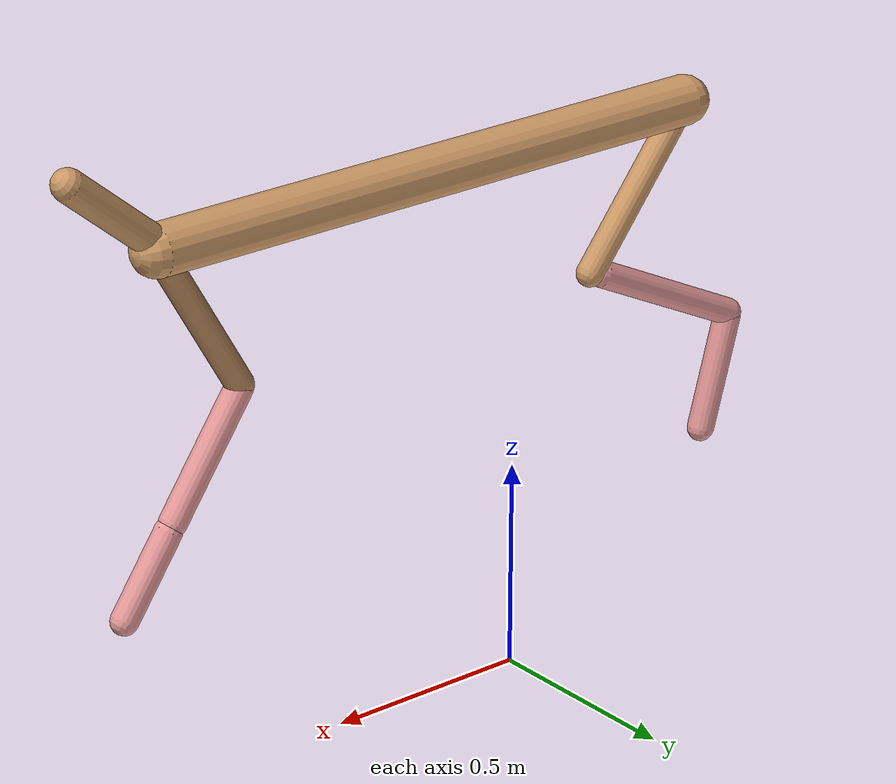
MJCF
<mujoco model="cheetah">
  <compiler angle="radian" coordinate="local" inertiafromgeom="true" settotalmass="14" />
  <default>
    <joint armature=".1" damping=".01" limited="true" solimplimit="0 .8 .03" solreflimit=".02 1" stiffness="8" />
    <geom conaffinity="0" condim="3" contype="1" friction="0.8 .1 .1" rgba="0.8 0.6 .4 1" solimp="0.0 0.8 0.01" solref="0.02 1" />
    <motor ctrllimited="true" ctrlrange="-1 1" />
  </default>
  <size nstack="300000" nuser_geom="1" />
  <option gravity="0 0 -9.81" timestep="0.01" />
  <worldbody>
    <body name="torso" pos="0.0 0.0 1.2712855271918047">
      <joint armature="0" axis="1 0 0" damping="0" limited="false" name="ignorex" pos="0 0 0" stiffness="0" type="slide" />
      <joint armature="0" axis="0 0 1" damping="0" limited="false" name="ignorez" pos="0 0 0" stiffness="0" type="slide" />
      <joint armature="0" axis="0 1 0" damping="0" limited="false" name="ignorey" pos="0 0 0" stiffness="0" type="hinge" />
      <geom fromto="-0.5 0.0 0.0 0.9725767863297508 0.0 0.0" name="torso" size="0.059430438493215096" type="capsule" />
      <geom axisangle="0 1 0 .87" name="head" pos="1.0725767863297508 0.0 0.1" size="0.03691053102972311 0.15" type="capsule" />

      <body name="bthigh" pos="-.5 0 0">
        <joint axis="0 1 0" damping="6" name="bthigh" pos="0 0 0" range="-.52 1.05" stiffness="240" type="hinge" />
        <geom axisangle="0 1 0 -3.8" name="bthigh" pos="0.14280190283876887 0.0 -0.18564247369039952" size="0.0322 0.2152003402057726" type="capsule" />
        <body name="bshin" pos="0.24560380567753773 0.0 -0.361284947380799">
          <joint axis="0 1 0" damping="4.5" name="bshin" pos="0 0 0" range="-.785 .785" stiffness="180" type="hinge" />
          <geom axisangle="0 1 0 -2.03" name="bshin" pos="-0.20495423423878034 0.0 -0.10247711711939017" rgba="0.9 0.6 0.6 1" size="0.0322 0.22262104159217858" type="capsule" />
          <body name="bfoot" pos="-0.4099084684775607 0.0 -0.20495423423878034">
            <joint axis="0 1 0" damping="3" name="bfoot" pos="0 0 0" range="-.4 .785" stiffness="120" type="hinge" />
            <geom axisangle="0 1 0 -.27" name="bfoot" pos="0.04344658659686651 0.0 -0.14047729666320175" rgba="0.9 0.6 0.6 1" size="0.0322 0.1395091860644319" type="capsule" />
            <inertial mass="10" />
          </body>
        </body>
      </body>
      <body name="fthigh" pos="0.9725767863297508 0.0 0.0">
        <joint axis="0 1 0" damping="4.5" name="fthigh" pos="0 0 0" range="-1.5 0.8" stiffness="180" type="hinge" />
        <geom axisangle="0 1 0 .52" name="fthigh" pos="-0.10583118920990972 0.0 -0.18142489578841664" size="0.0322 0.20411182702486413" type="capsule" />
        <body name="fshin" pos="-0.21166237841981944 0.0 -0.3628497915768333">
          <joint axis="0 1 0" damping="3" name="fshin" pos="0 0 0" range="-1.2 1.1" stiffness="120" type="hinge" />
          <geom axisangle="0 1 0 -.6" name="fshin" pos="0.09818302343537762 0.0 -0.1359457247566767" rgba="0.9 0.6 0.6 1" size="0.0322 0.16267559146342556" type="capsule" />
          <body name="ffoot" pos="0.19636604687075523 0.0 -0.2718914495133534">
            <joint axis="0 1 0" damping="1.5" name="ffoot" pos="0 0 0" range="-3.1 -0.3" stiffness="60" type="hinge" />
            <geom axisangle="0 1 0 -.6" name="ffoot" pos="0.06523908436624615 0.0 -0.1014830201252718" rgba="0.9 0.6 0.6 1" size="0.0322 0.10742727738150745" type="capsule" />
            <inertial mass="10" />
          </body>
        </body>
      </body>
    </body>
  </worldbody>
  <actuator>
    <motor gear="120" joint="bthigh" name="bthigh" />
    <motor gear="90" joint="bshin" name="bshin" />
    <motor gear="60" joint="bfoot" name="bfoot" />
    <motor gear="120" joint="fthigh" name="fthigh" />
    <motor gear="60" joint="fshin" name="fshin" />
    <motor gear="30" joint="ffoot" name="ffoot" />
  </actuator>
</mujoco>
